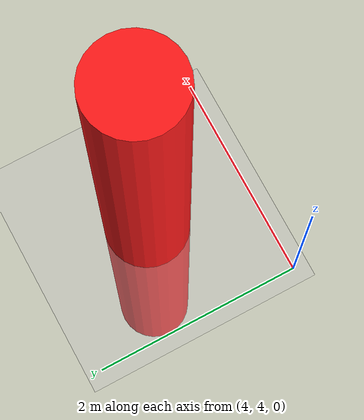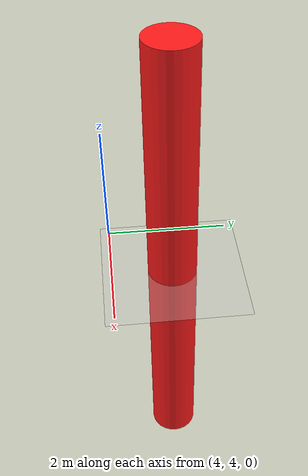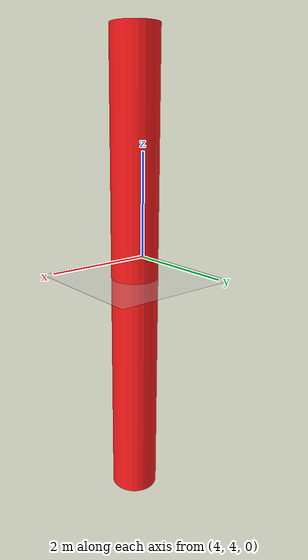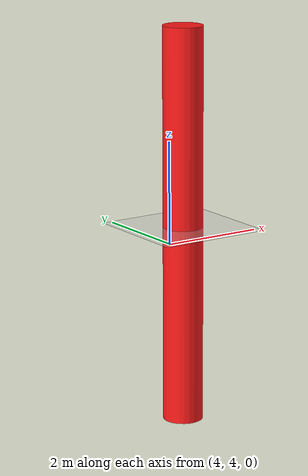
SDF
<?xml version="1.0"?>
<sdf version="1.9">
  <world name="default">
    <physics name="default_physics" type="dart">
      <max_step_size>0.001</max_step_size>
      <real_time_factor>1.0</real_time_factor>
    </physics>

    <plugin filename="gz-sim-physics-system" name="gz::sim::systems::Physics"/>
    <plugin filename="gz-sim-sensors-system" name="gz::sim::systems::Sensors"><render_engine>ogre2</render_engine></plugin>
    <plugin filename="gz-sim-user-commands-system" name="gz::sim::systems::UserCommands"/>
    <plugin filename="gz-sim-scene-broadcaster-system" name="gz::sim::systems::SceneBroadcaster"/>

    <model name="ground_plane">
      <static>true</static>
      <link name="link">
        <collision name="col"><geometry><plane><normal>0 0 1</normal><size>100 100</size></plane></geometry></collision>
        <visual name="vis"><geometry><plane><normal>0 0 1</normal><size>100 100</size></plane></geometry></visual>
      </link>
    </model>

    <!-- EMI Tower Visual Marker -->
    <model name="emi_emitter_tower">
      <static>true</static>
      <pose>5 5 0 0 0 0</pose>
      <link name="link">
        <visual name="vis">
          <geometry><cylinder><radius>0.4</radius><length>8.0</length></cylinder></geometry>
          <material><ambient>1.0 0.1 0.1 1</ambient><diffuse>1.0 0.1 0.1 1</diffuse></material>
        </visual>
      </link>
    </model>

    <light name="sun" type="directional">
      <cast_shadows>true</cast_shadows>
      <pose>0 0 20 0 0 0</pose>
      <direction>-0.5 0.2 -0.8</direction>
    </light>
  </world>
</sdf>
